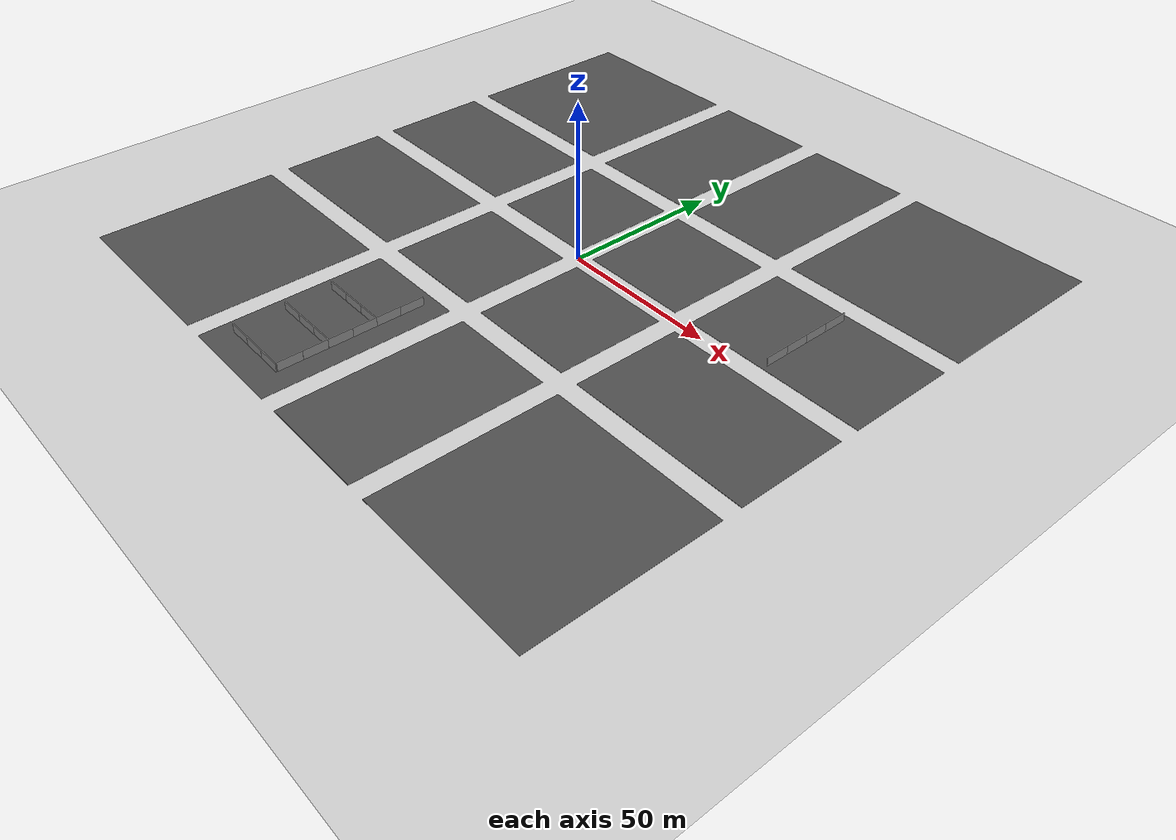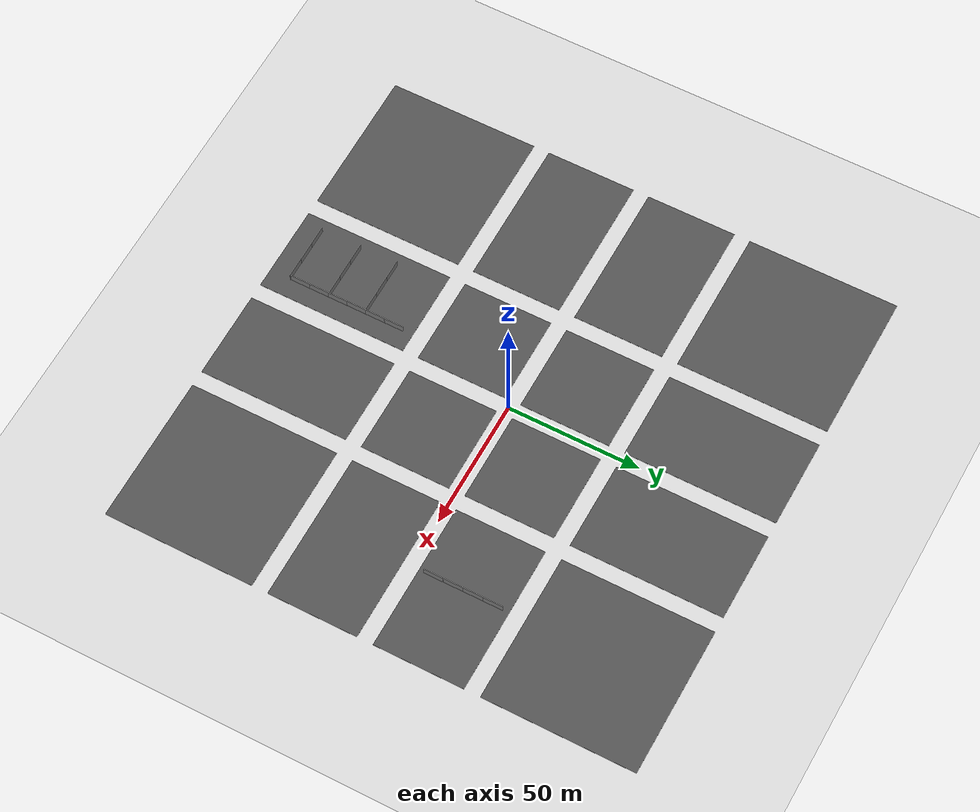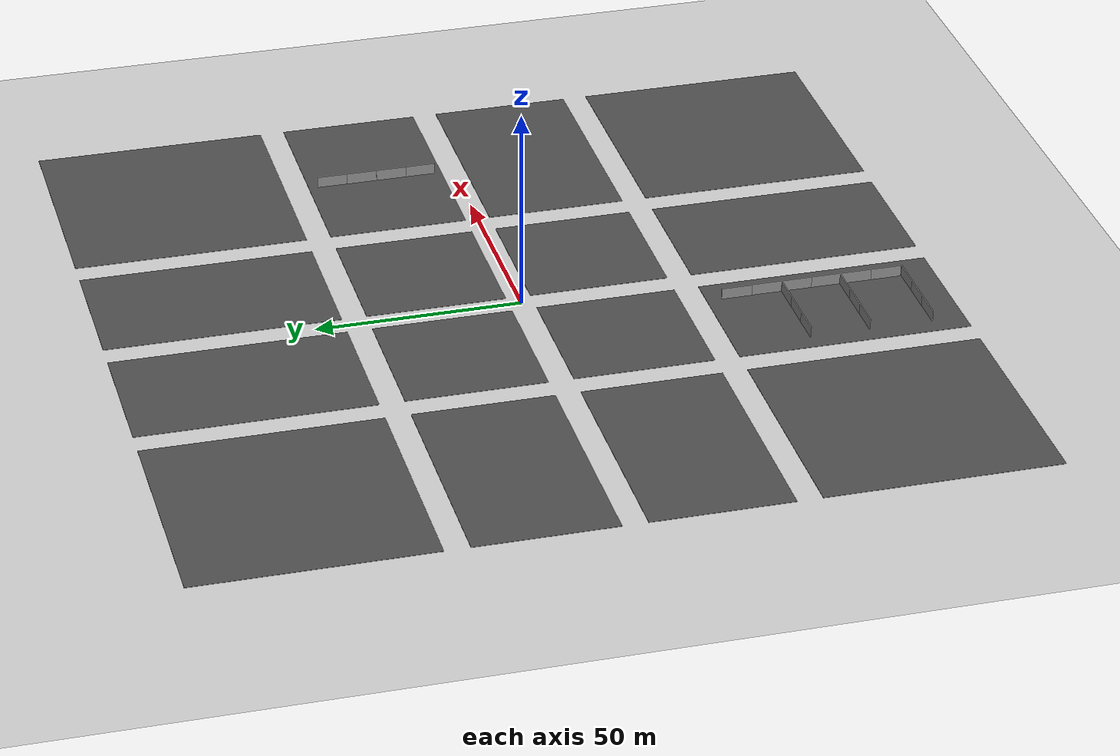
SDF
<sdf version="1.6">
 <world name="default">
  <light name="sun" type="directional">
   <pose>0 0 10 0 -0 0</pose>
   <diffuse>0.8 0.8 0.8 1</diffuse>
   <specular>0.2 0.2 0.2 1</specular>
   <attenuation>
    <range>1000</range>
    <constant>0.9</constant>
    <linear>0.01</linear>
    <quadratic>0.001</quadratic>
   </attenuation>
   <direction>-0.5 0.1 -0.9</direction>
  </light>
  <plugin name="ros_interface_plugin" filename="librotors_gazebo_ros_interface_plugin.so"/>
  <model name="ground_plane">
   <static>1</static>
   <link name="link">
    <collision name="collision">
     <geometry><plane><normal>0 0 1</normal><size>100 100</size></plane></geometry>
     <surface>
      <contact><collide_bitmask>65535</collide_bitmask></contact>
      <friction><ode><mu>100</mu><mu2>50</mu2></ode></friction>
     </surface>
    </collision>
    <visual name="visual">
     <cast_shadows>0</cast_shadows>
     <geometry><plane><normal>0 0 1</normal><size>100 100</size></plane></geometry>
     <material>
      <script><uri>file://media/materials/scripts/gazebo.material</uri><name>Gazebo/Grey</name></script>
     </material>
    </visual>
   </link>
  </model>
  <gravity>0 0 -9.8</gravity>
  <magnetic_field>6e-06 2.3e-05 -4.2e-05</magnetic_field>
  <atmosphere type="adiabatic"/>
  <physics name="default_physics" default="0" type="ode">
   <max_step_size>0.0125</max_step_size>
   <real_time_factor>1</real_time_factor>
   <real_time_update_rate>80</real_time_update_rate>
  </physics>
  <scene><ambient>0.4 0.4 0.4 1</ambient><background>0.7 0.7 0.7 1</background><shadows>1</shadows></scene>
  <audio><device>default</device></audio>
  <spherical_coordinates>
   <surface_model>EARTH_WGS84</surface_model>
   <latitude_deg>47.3667</latitude_deg>
   <longitude_deg>8.55</longitude_deg>
   <elevation>500</elevation>
   <heading_deg>0</heading_deg>
  </spherical_coordinates>
  <model name="grey_wall_0">
   <static>1</static>
   <link name="link">
    <pose>0 0 1.4 0 -0 0</pose>
    <collision name="collision"><geometry><box><size>7.5 0.2 2.8</size></box></geometry></collision>
    <visual name="visual">
     <cast_shadows>0</cast_shadows>
     <geometry><box><size>7.5 0.2 2.8</size></box></geometry>
     <material>
      <script>
       <uri>model://grey_wall/materials/scripts</uri>
       <uri>model://grey_wall/materials/textures</uri>
       <name>vrc/grey_wall</name>
      </script>
     </material>
    </visual>
   </link>
   <pose>-13.6485 -91.8724 0 0 -0 0</pose>
  </model>
  <model name="grey_wall_1">
   <static>1</static>
   <link name="link">
    <pose>0 0 1.4 0 -0 0</pose>
    <collision name="collision"><geometry><box><size>7.5 0.2 2.8</size></box></geometry></collision>
    <visual name="visual">
     <cast_shadows>0</cast_shadows>
     <geometry><box><size>7.5 0.2 2.8</size></box></geometry>
     <material>
      <script>
       <uri>model://grey_wall/materials/scripts</uri>
       <uri>model://grey_wall/materials/textures</uri>
       <name>vrc/grey_wall</name>
      </script>
     </material>
    </visual>
   </link>
   <pose>-21.1622 -91.8562 0 0 -0 0</pose>
  </model>
  <model name="grey_wall_2">
   <static>1</static>
   <link name="link">
    <pose>0 0 1.4 0 -0 0</pose>
    <collision name="collision"><geometry><box><size>7.5 0.2 2.8</size></box></geometry></collision>
    <visual name="visual">
     <cast_shadows>0</cast_shadows>
     <geometry><box><size>7.5 0.2 2.8</size></box></geometry>
     <material>
      <script>
       <uri>model://grey_wall/materials/scripts</uri>
       <uri>model://grey_wall/materials/textures</uri>
       <name>vrc/grey_wall</name>
      </script>
     </material>
    </visual>
   </link>
   <pose>-28.7002 -91.8648 0 0 -0 0</pose>
  </model>
  <model name="grey_wall_3">
   <static>1</static>
   <link name="link">
    <pose>0 0 1.4 0 -0 0</pose>
    <collision name="collision"><geometry><box><size>7.5 0.2 2.8</size></box></geometry></collision>
    <visual name="visual">
     <cast_shadows>0</cast_shadows>
     <geometry><box><size>7.5 0.2 2.8</size></box></geometry>
     <material>
      <script>
       <uri>model://grey_wall/materials/scripts</uri>
       <uri>model://grey_wall/materials/textures</uri>
       <name>vrc/grey_wall</name>
      </script>
     </material>
    </visual>
   </link>
   <pose>-13.8674 -61.7168 0 0 -0 0</pose>
  </model>
  <model name="grey_wall_4">
   <static>1</static>
   <link name="link">
    <pose>0 0 1.4 0 -0 0</pose>
    <collision name="collision"><geometry><box><size>7.5 0.2 2.8</size></box></geometry></collision>
    <visual name="visual">
     <cast_shadows>0</cast_shadows>
     <geometry><box><size>7.5 0.2 2.8</size></box></geometry>
     <material>
      <script>
       <uri>model://grey_wall/materials/scripts</uri>
       <uri>model://grey_wall/materials/textures</uri>
       <name>vrc/grey_wall</name>
      </script>
     </material>
    </visual>
   </link>
   <pose>-13.8061 -76.3282 0 0 -0 0</pose>
  </model>
  <model name="grey_wall_5">
   <static>1</static>
   <link name="link">
    <pose>0 0 1.4 0 -0 0</pose>
    <collision name="collision"><geometry><box><size>7.5 0.2 2.8</size></box></geometry></collision>
    <visual name="visual">
     <cast_shadows>0</cast_shadows>
     <geometry><box><size>7.5 0.2 2.8</size></box></geometry>
     <material>
      <script>
       <uri>model://grey_wall/materials/scripts</uri>
       <uri>model://grey_wall/materials/textures</uri>
       <name>vrc/grey_wall</name>
      </script>
     </material>
    </visual>
   </link>
   <pose>-21.2633 -76.3346 0 0 -0 0</pose>
  </model>
  <model name="grey_wall_6">
   <static>1</static>
   <link name="link">
    <pose>0 0 1.4 0 -0 0</pose>
    <collision name="collision"><geometry><box><size>7.5 0.2 2.8</size></box></geometry></collision>
    <visual name="visual">
     <cast_shadows>0</cast_shadows>
     <geometry><box><size>7.5 0.2 2.8</size></box></geometry>
     <material>
      <script>
       <uri>model://grey_wall/materials/scripts</uri>
       <uri>model://grey_wall/materials/textures</uri>
       <name>vrc/grey_wall</name>
      </script>
     </material>
    </visual>
   </link>
   <pose>-21.3782 -61.7197 0 0 -0 0</pose>
  </model>
  <model name="grey_wall_7">
   <static>1</static>
   <link name="link">
    <pose>0 0 1.4 0 -0 0</pose>
    <collision name="collision"><geometry><box><size>7.5 0.2 2.8</size></box></geometry></collision>
    <visual name="visual">
     <cast_shadows>0</cast_shadows>
     <geometry><box><size>7.5 0.2 2.8</size></box></geometry>
     <material>
      <script>
       <uri>model://grey_wall/materials/scripts</uri>
       <uri>model://grey_wall/materials/textures</uri>
       <name>vrc/grey_wall</name>
      </script>
     </material>
    </visual>
   </link>
   <pose>-28.766 -76.3295 0 0 -0 0</pose>
  </model>
  <model name="grey_wall_8">
   <static>1</static>
   <link name="link">
    <pose>0 0 1.4 0 -0 0</pose>
    <collision name="collision"><geometry><box><size>7.5 0.2 2.8</size></box></geometry></collision>
    <visual name="visual">
     <cast_shadows>0</cast_shadows>
     <geometry><box><size>7.5 0.2 2.8</size></box></geometry>
     <material>
      <script>
       <uri>model://grey_wall/materials/scripts</uri>
       <uri>model://grey_wall/materials/textures</uri>
       <name>vrc/grey_wall</name>
      </script>
     </material>
    </visual>
   </link>
   <pose>-28.8862 -61.7116 0 0 -0 0</pose>
  </model>
  <model name="asphalt_plane_34x57">
   <link name="link">
    <inertial>
     <mass>1</mass>
     <inertia><ixx>1</ixx><ixy>0</ixy><ixz>0</ixz><iyy>1</iyy><iyz>0</iyz><izz>1</izz></inertia>
    </inertial>
    <visual name="visual">
     <cast_shadows>0</cast_shadows>
     <geometry><box><size>34 57 0.1</size></box></geometry>
     <material>
      <script>
       <uri>model://asphalt_plane/materials/scripts</uri>
       <uri>model://asphalt_plane/materials/textures</uri>
       <name>vrc/asphalt</name>
      </script>
      <shader type="vertex"><normal_map>__default__</normal_map></shader>
      <ambient>0.5 0.5 0.5 1</ambient>
      <diffuse>0.5 0.5 0.5 1</diffuse>
      <specular>0.2 0.2 0.2 1</specular>
      <emissive>0 0 0 1</emissive>
     </material>
    </visual>
    <collision name="collision">
     <geometry><box><size>34 57 0.1</size></box></geometry>
     <surface>
      <friction>
       <ode><mu>1</mu><mu2>1</mu2><fdir1>0 0 0</fdir1><slip1>0</slip1><slip2>0</slip2></ode>
       <torsional>
        <coefficient>1</coefficient>
        <patch_radius>0</patch_radius>
        <surface_radius>0</surface_radius>
        <use_patch_radius>1</use_patch_radius>
        <ode><slip>0</slip></ode>
       </torsional>
      </friction>
      <bounce><restitution_coefficient>0</restitution_coefficient><threshold>1e+06</threshold></bounce>
      <contact>
       <collide_without_contact>0</collide_without_contact>
       <collide_without_contact_bitmask>1</collide_without_contact_bitmask>
       <collide_bitmask>1</collide_bitmask>
       <ode>
        <soft_cfm>0</soft_cfm>
        <soft_erp>0.2</soft_erp>
        <kp>1e+13</kp>
        <kd>1</kd>
        <max_vel>0.01</max_vel>
        <min_depth>0</min_depth>
       </ode>
       <bullet>
        <split_impulse>1</split_impulse>
        <split_impulse_penetration_threshold>-0.01</split_impulse_penetration_threshold>
        <soft_cfm>0</soft_cfm>
        <soft_erp>0.2</soft_erp>
        <kp>1e+13</kp>
        <kd>1</kd>
       </bullet>
      </contact>
     </surface>
    </collision>
   </link>
   <static>1</static>
   <pose>71.5 -20 0 0 0 -1.5708</pose>
  </model>
  <model name="asphalt_plane_34x57_0">
   <link name="link">
    <inertial>
     <mass>1</mass>
     <inertia><ixx>1</ixx><ixy>0</ixy><ixz>0</ixz><iyy>1</iyy><iyz>0</iyz><izz>1</izz></inertia>
    </inertial>
    <visual name="visual">
     <cast_shadows>0</cast_shadows>
     <geometry><box><size>34 57 0.1</size></box></geometry>
     <material>
      <script>
       <uri>model://asphalt_plane/materials/scripts</uri>
       <uri>model://asphalt_plane/materials/textures</uri>
       <name>vrc/asphalt</name>
      </script>
      <shader type="vertex"><normal_map>__default__</normal_map></shader>
      <ambient>0.5 0.5 0.5 1</ambient>
      <diffuse>0.5 0.5 0.5 1</diffuse>
      <specular>0.2 0.2 0.2 1</specular>
      <emissive>0 0 0 1</emissive>
     </material>
    </visual>
    <collision name="collision">
     <geometry><box><size>34 57 0.1</size></box></geometry>
     <surface>
      <friction>
       <ode><mu>1</mu><mu2>1</mu2><fdir1>0 0 0</fdir1><slip1>0</slip1><slip2>0</slip2></ode>
       <torsional>
        <coefficient>1</coefficient>
        <patch_radius>0</patch_radius>
        <surface_radius>0</surface_radius>
        <use_patch_radius>1</use_patch_radius>
        <ode><slip>0</slip></ode>
       </torsional>
      </friction>
      <bounce><restitution_coefficient>0</restitution_coefficient><threshold>1e+06</threshold></bounce>
      <contact>
       <collide_without_contact>0</collide_without_contact>
       <collide_without_contact_bitmask>1</collide_without_contact_bitmask>
       <collide_bitmask>1</collide_bitmask>
       <ode>
        <soft_cfm>0</soft_cfm>
        <soft_erp>0.2</soft_erp>
        <kp>1e+13</kp>
        <kd>1</kd>
        <max_vel>0.01</max_vel>
        <min_depth>0</min_depth>
       </ode>
       <bullet>
        <split_impulse>1</split_impulse>
        <split_impulse_penetration_threshold>-0.01</split_impulse_penetration_threshold>
        <soft_cfm>0</soft_cfm>
        <soft_erp>0.2</soft_erp>
        <kp>1e+13</kp>
        <kd>1</kd>
       </bullet>
      </contact>
     </surface>
    </collision>
   </link>
   <static>1</static>
   <pose>-20 -71.5 0 0 -0 0</pose>
  </model>
  <model name="asphalt_plane_34x57_1">
   <link name="link">
    <inertial>
     <mass>1</mass>
     <inertia><ixx>1</ixx><ixy>0</ixy><ixz>0</ixz><iyy>1</iyy><iyz>0</iyz><izz>1</izz></inertia>
    </inertial>
    <visual name="visual">
     <cast_shadows>0</cast_shadows>
     <geometry><box><size>34 57 0.1</size></box></geometry>
     <material>
      <script>
       <uri>model://asphalt_plane/materials/scripts</uri>
       <uri>model://asphalt_plane/materials/textures</uri>
       <name>vrc/asphalt</name>
      </script>
      <shader type="vertex"><normal_map>__default__</normal_map></shader>
      <ambient>0.5 0.5 0.5 1</ambient>
      <diffuse>0.5 0.5 0.5 1</diffuse>
      <specular>0.2 0.2 0.2 1</specular>
      <emissive>0 0 0 1</emissive>
     </material>
    </visual>
    <collision name="collision">
     <geometry><box><size>34 57 0.1</size></box></geometry>
     <surface>
      <friction>
       <ode><mu>1</mu><mu2>1</mu2><fdir1>0 0 0</fdir1><slip1>0</slip1><slip2>0</slip2></ode>
       <torsional>
        <coefficient>1</coefficient>
        <patch_radius>0</patch_radius>
        <surface_radius>0</surface_radius>
        <use_patch_radius>1</use_patch_radius>
        <ode><slip>0</slip></ode>
       </torsional>
      </friction>
      <bounce><restitution_coefficient>0</restitution_coefficient><threshold>1e+06</threshold></bounce>
      <contact>
       <collide_without_contact>0</collide_without_contact>
       <collide_without_contact_bitmask>1</collide_without_contact_bitmask>
       <collide_bitmask>1</collide_bitmask>
       <ode>
        <soft_cfm>0</soft_cfm>
        <soft_erp>0.2</soft_erp>
        <kp>1e+13</kp>
        <kd>1</kd>
        <max_vel>0.01</max_vel>
        <min_depth>0</min_depth>
       </ode>
       <bullet>
        <split_impulse>1</split_impulse>
        <split_impulse_penetration_threshold>-0.01</split_impulse_penetration_threshold>
        <soft_cfm>0</soft_cfm>
        <soft_erp>0.2</soft_erp>
        <kp>1e+13</kp>
        <kd>1</kd>
       </bullet>
      </contact>
     </surface>
    </collision>
   </link>
   <static>1</static>
   <pose>20 -71.5 0 0 -0 0</pose>
  </model>
  <model name="asphalt_plane_34x57_2">
   <link name="link">
    <inertial>
     <mass>1</mass>
     <inertia><ixx>1</ixx><ixy>0</ixy><ixz>0</ixz><iyy>1</iyy><iyz>0</iyz><izz>1</izz></inertia>
    </inertial>
    <visual name="visual">
     <cast_shadows>0</cast_shadows>
     <geometry><box><size>34 57 0.1</size></box></geometry>
     <material>
      <script>
       <uri>model://asphalt_plane/materials/scripts</uri>
       <uri>model://asphalt_plane/materials/textures</uri>
       <name>vrc/asphalt</name>
      </script>
      <shader type="vertex"><normal_map>__default__</normal_map></shader>
      <ambient>0.5 0.5 0.5 1</ambient>
      <diffuse>0.5 0.5 0.5 1</diffuse>
      <specular>0.2 0.2 0.2 1</specular>
      <emissive>0 0 0 1</emissive>
     </material>
    </visual>
    <collision name="collision">
     <geometry><box><size>34 57 0.1</size></box></geometry>
     <surface>
      <friction>
       <ode><mu>1</mu><mu2>1</mu2><fdir1>0 0 0</fdir1><slip1>0</slip1><slip2>0</slip2></ode>
       <torsional>
        <coefficient>1</coefficient>
        <patch_radius>0</patch_radius>
        <surface_radius>0</surface_radius>
        <use_patch_radius>1</use_patch_radius>
        <ode><slip>0</slip></ode>
       </torsional>
      </friction>
      <bounce><restitution_coefficient>0</restitution_coefficient><threshold>1e+06</threshold></bounce>
      <contact>
       <collide_without_contact>0</collide_without_contact>
       <collide_without_contact_bitmask>1</collide_without_contact_bitmask>
       <collide_bitmask>1</collide_bitmask>
       <ode>
        <soft_cfm>0</soft_cfm>
        <soft_erp>0.2</soft_erp>
        <kp>1e+13</kp>
        <kd>1</kd>
        <max_vel>0.01</max_vel>
        <min_depth>0</min_depth>
       </ode>
       <bullet>
        <split_impulse>1</split_impulse>
        <split_impulse_penetration_threshold>-0.01</split_impulse_penetration_threshold>
        <soft_cfm>0</soft_cfm>
        <soft_erp>0.2</soft_erp>
        <kp>1e+13</kp>
        <kd>1</kd>
       </bullet>
      </contact>
     </surface>
    </collision>
   </link>
   <static>1</static>
   <pose>20 71.5 0 0 -0 0</pose>
  </model>
  <model name="asphalt_plane_34x57_3">
   <link name="link">
    <inertial>
     <mass>1</mass>
     <inertia><ixx>1</ixx><ixy>0</ixy><ixz>0</ixz><iyy>1</iyy><iyz>0</iyz><izz>1</izz></inertia>
    </inertial>
    <visual name="visual">
     <cast_shadows>0</cast_shadows>
     <geometry><box><size>34 57 0.1</size></box></geometry>
     <material>
      <script>
       <uri>model://asphalt_plane/materials/scripts</uri>
       <uri>model://asphalt_plane/materials/textures</uri>
       <name>vrc/asphalt</name>
      </script>
      <shader type="vertex"><normal_map>__default__</normal_map></shader>
      <ambient>0.5 0.5 0.5 1</ambient>
      <diffuse>0.5 0.5 0.5 1</diffuse>
      <specular>0.2 0.2 0.2 1</specular>
      <emissive>0 0 0 1</emissive>
     </material>
    </visual>
    <collision name="collision">
     <geometry><box><size>34 57 0.1</size></box></geometry>
     <surface>
      <friction>
       <ode><mu>1</mu><mu2>1</mu2><fdir1>0 0 0</fdir1><slip1>0</slip1><slip2>0</slip2></ode>
       <torsional>
        <coefficient>1</coefficient>
        <patch_radius>0</patch_radius>
        <surface_radius>0</surface_radius>
        <use_patch_radius>1</use_patch_radius>
        <ode><slip>0</slip></ode>
       </torsional>
      </friction>
      <bounce><restitution_coefficient>0</restitution_coefficient><threshold>1e+06</threshold></bounce>
      <contact>
       <collide_without_contact>0</collide_without_contact>
       <collide_without_contact_bitmask>1</collide_without_contact_bitmask>
       <collide_bitmask>1</collide_bitmask>
       <ode>
        <soft_cfm>0</soft_cfm>
        <soft_erp>0.2</soft_erp>
        <kp>1e+13</kp>
        <kd>1</kd>
        <max_vel>0.01</max_vel>
        <min_depth>0</min_depth>
       </ode>
       <bullet>
        <split_impulse>1</split_impulse>
        <split_impulse_penetration_threshold>-0.01</split_impulse_penetration_threshold>
        <soft_cfm>0</soft_cfm>
        <soft_erp>0.2</soft_erp>
        <kp>1e+13</kp>
        <kd>1</kd>
       </bullet>
      </contact>
     </surface>
    </collision>
   </link>
   <static>1</static>
   <pose>-20 71.5 0 0 -0 0</pose>
  </model>
  <model name="asphalt_plane_34x57_4">
   <link name="link">
    <inertial>
     <mass>1</mass>
     <inertia><ixx>1</ixx><ixy>0</ixy><ixz>0</ixz><iyy>1</iyy><iyz>0</iyz><izz>1</izz></inertia>
    </inertial>
    <visual name="visual">
     <cast_shadows>0</cast_shadows>
     <geometry><box><size>34 57 0.1</size></box></geometry>
     <material>
      <script>
       <uri>model://asphalt_plane/materials/scripts</uri>
       <uri>model://asphalt_plane/materials/textures</uri>
       <name>vrc/asphalt</name>
      </script>
      <shader type="vertex"><normal_map>__default__</normal_map></shader>
      <ambient>0.5 0.5 0.5 1</ambient>
      <diffuse>0.5 0.5 0.5 1</diffuse>
      <specular>0.2 0.2 0.2 1</specular>
      <emissive>0 0 0 1</emissive>
     </material>
    </visual>
    <collision name="collision">
     <geometry><box><size>34 57 0.1</size></box></geometry>
     <surface>
      <friction>
       <ode><mu>1</mu><mu2>1</mu2><fdir1>0 0 0</fdir1><slip1>0</slip1><slip2>0</slip2></ode>
       <torsional>
        <coefficient>1</coefficient>
        <patch_radius>0</patch_radius>
        <surface_radius>0</surface_radius>
        <use_patch_radius>1</use_patch_radius>
        <ode><slip>0</slip></ode>
       </torsional>
      </friction>
      <bounce><restitution_coefficient>0</restitution_coefficient><threshold>1e+06</threshold></bounce>
      <contact>
       <collide_without_contact>0</collide_without_contact>
       <collide_without_contact_bitmask>1</collide_without_contact_bitmask>
       <collide_bitmask>1</collide_bitmask>
       <ode>
        <soft_cfm>0</soft_cfm>
        <soft_erp>0.2</soft_erp>
        <kp>1e+13</kp>
        <kd>1</kd>
        <max_vel>0.01</max_vel>
        <min_depth>0</min_depth>
       </ode>
       <bullet>
        <split_impulse>1</split_impulse>
        <split_impulse_penetration_threshold>-0.01</split_impulse_penetration_threshold>
        <soft_cfm>0</soft_cfm>
        <soft_erp>0.2</soft_erp>
        <kp>1e+13</kp>
        <kd>1</kd>
       </bullet>
      </contact>
     </surface>
    </collision>
   </link>
   <static>1</static>
   <pose>71.5 20 0 0 0 -1.5708</pose>
  </model>
  <model name="asphalt_plane_34x57_5">
   <link name="link">
    <inertial>
     <mass>1</mass>
     <inertia><ixx>1</ixx><ixy>0</ixy><ixz>0</ixz><iyy>1</iyy><iyz>0</iyz><izz>1</izz></inertia>
    </inertial>
    <visual name="visual">
     <cast_shadows>0</cast_shadows>
     <geometry><box><size>34 57 0.1</size></box></geometry>
     <material>
      <script>
       <uri>model://asphalt_plane/materials/scripts</uri>
       <uri>model://asphalt_plane/materials/textures</uri>
       <name>vrc/asphalt</name>
      </script>
      <shader type="vertex"><normal_map>__default__</normal_map></shader>
      <ambient>0.5 0.5 0.5 1</ambient>
      <diffuse>0.5 0.5 0.5 1</diffuse>
      <specular>0.2 0.2 0.2 1</specular>
      <emissive>0 0 0 1</emissive>
     </material>
    </visual>
    <collision name="collision">
     <geometry><box><size>34 57 0.1</size></box></geometry>
     <surface>
      <friction>
       <ode><mu>1</mu><mu2>1</mu2><fdir1>0 0 0</fdir1><slip1>0</slip1><slip2>0</slip2></ode>
       <torsional>
        <coefficient>1</coefficient>
        <patch_radius>0</patch_radius>
        <surface_radius>0</surface_radius>
        <use_patch_radius>1</use_patch_radius>
        <ode><slip>0</slip></ode>
       </torsional>
      </friction>
      <bounce><restitution_coefficient>0</restitution_coefficient><threshold>1e+06</threshold></bounce>
      <contact>
       <collide_without_contact>0</collide_without_contact>
       <collide_without_contact_bitmask>1</collide_without_contact_bitmask>
       <collide_bitmask>1</collide_bitmask>
       <ode>
        <soft_cfm>0</soft_cfm>
        <soft_erp>0.2</soft_erp>
        <kp>1e+13</kp>
        <kd>1</kd>
        <max_vel>0.01</max_vel>
        <min_depth>0</min_depth>
       </ode>
       <bullet>
        <split_impulse>1</split_impulse>
        <split_impulse_penetration_threshold>-0.01</split_impulse_penetration_threshold>
        <soft_cfm>0</soft_cfm>
        <soft_erp>0.2</soft_erp>
        <kp>1e+13</kp>
        <kd>1</kd>
       </bullet>
      </contact>
     </surface>
    </collision>
   </link>
   <static>1</static>
   <pose>-71.5 20 0 0 0 -1.5708</pose>
  </model>
  <model name="asphalt_plane_34x57_6">
   <link name="link">
    <inertial>
     <mass>1</mass>
     <inertia><ixx>1</ixx><ixy>0</ixy><ixz>0</ixz><iyy>1</iyy><iyz>0</iyz><izz>1</izz></inertia>
    </inertial>
    <visual name="visual">
     <cast_shadows>0</cast_shadows>
     <geometry><box><size>34 57 0.1</size></box></geometry>
     <material>
      <script>
       <uri>model://asphalt_plane/materials/scripts</uri>
       <uri>model://asphalt_plane/materials/textures</uri>
       <name>vrc/asphalt</name>
      </script>
      <shader type="vertex"><normal_map>__default__</normal_map></shader>
      <ambient>0.5 0.5 0.5 1</ambient>
      <diffuse>0.5 0.5 0.5 1</diffuse>
      <specular>0.2 0.2 0.2 1</specular>
      <emissive>0 0 0 1</emissive>
     </material>
    </visual>
    <collision name="collision">
     <geometry><box><size>34 57 0.1</size></box></geometry>
     <surface>
      <friction>
       <ode><mu>1</mu><mu2>1</mu2><fdir1>0 0 0</fdir1><slip1>0</slip1><slip2>0</slip2></ode>
       <torsional>
        <coefficient>1</coefficient>
        <patch_radius>0</patch_radius>
        <surface_radius>0</surface_radius>
        <use_patch_radius>1</use_patch_radius>
        <ode><slip>0</slip></ode>
       </torsional>
      </friction>
      <bounce><restitution_coefficient>0</restitution_coefficient><threshold>1e+06</threshold></bounce>
      <contact>
       <collide_without_contact>0</collide_without_contact>
       <collide_without_contact_bitmask>1</collide_without_contact_bitmask>
       <collide_bitmask>1</collide_bitmask>
       <ode>
        <soft_cfm>0</soft_cfm>
        <soft_erp>0.2</soft_erp>
        <kp>1e+13</kp>
        <kd>1</kd>
        <max_vel>0.01</max_vel>
        <min_depth>0</min_depth>
       </ode>
       <bullet>
        <split_impulse>1</split_impulse>
        <split_impulse_penetration_threshold>-0.01</split_impulse_penetration_threshold>
        <soft_cfm>0</soft_cfm>
        <soft_erp>0.2</soft_erp>
        <kp>1e+13</kp>
        <kd>1</kd>
       </bullet>
      </contact>
     </surface>
    </collision>
   </link>
   <static>1</static>
   <pose>-71.5 -20 0 0 0 -1.5708</pose>
  </model>
  <model name="asphalt_plane_57x57">
   <link name="link">
    <inertial>
     <mass>1</mass>
     <inertia><ixx>1</ixx><ixy>0</ixy><ixz>0</ixz><iyy>1</iyy><iyz>0</iyz><izz>1</izz></inertia>
    </inertial>
    <visual name="visual">
     <cast_shadows>0</cast_shadows>
     <geometry><box><size>57 57 0.1</size></box></geometry>
     <material>
      <script>
       <uri>model://asphalt_plane/materials/scripts</uri>
       <uri>model://asphalt_plane/materials/textures</uri>
       <name>vrc/asphalt</name>
      </script>
      <shader type="vertex"><normal_map>__default__</normal_map></shader>
      <ambient>0.5 0.5 0.5 1</ambient>
      <diffuse>0.5 0.5 0.5 1</diffuse>
      <specular>0.2 0.2 0.2 1</specular>
      <emissive>0 0 0 1</emissive>
     </material>
    </visual>
    <collision name="collision">
     <geometry><box><size>57 57 0.1</size></box></geometry>
     <surface>
      <friction>
       <ode><mu>1</mu><mu2>1</mu2><fdir1>0 0 0</fdir1><slip1>0</slip1><slip2>0</slip2></ode>
       <torsional>
        <coefficient>1</coefficient>
        <patch_radius>0</patch_radius>
        <surface_radius>0</surface_radius>
        <use_patch_radius>1</use_patch_radius>
        <ode><slip>0</slip></ode>
       </torsional>
      </friction>
      <bounce><restitution_coefficient>0</restitution_coefficient><threshold>1e+06</threshold></bounce>
      <contact>
       <collide_without_contact>0</collide_without_contact>
       <collide_without_contact_bitmask>1</collide_without_contact_bitmask>
       <collide_bitmask>1</collide_bitmask>
       <ode>
        <soft_cfm>0</soft_cfm>
        <soft_erp>0.2</soft_erp>
        <kp>1e+13</kp>
        <kd>1</kd>
        <max_vel>0.01</max_vel>
        <min_depth>0</min_depth>
       </ode>
       <bullet>
        <split_impulse>1</split_impulse>
        <split_impulse_penetration_threshold>-0.01</split_impulse_penetration_threshold>
        <soft_cfm>0</soft_cfm>
        <soft_erp>0.2</soft_erp>
        <kp>1e+13</kp>
        <kd>1</kd>
       </bullet>
      </contact>
     </surface>
    </collision>
   </link>
   <static>1</static>
   <pose>-71.5 -71.5 0 0 -0 0</pose>
  </model>
  <model name="asphalt_plane_57x57_0">
   <link name="link">
    <inertial>
     <mass>1</mass>
     <inertia><ixx>1</ixx><ixy>0</ixy><ixz>0</ixz><iyy>1</iyy><iyz>0</iyz><izz>1</izz></inertia>
    </inertial>
    <visual name="visual">
     <cast_shadows>0</cast_shadows>
     <geometry><box><size>57 57 0.1</size></box></geometry>
     <material>
      <script>
       <uri>model://asphalt_plane/materials/scripts</uri>
       <uri>model://asphalt_plane/materials/textures</uri>
       <name>vrc/asphalt</name>
      </script>
      <shader type="vertex"><normal_map>__default__</normal_map></shader>
      <ambient>0.5 0.5 0.5 1</ambient>
      <diffuse>0.5 0.5 0.5 1</diffuse>
      <specular>0.2 0.2 0.2 1</specular>
      <emissive>0 0 0 1</emissive>
     </material>
    </visual>
    <collision name="collision">
     <geometry><box><size>57 57 0.1</size></box></geometry>
     <surface>
      <friction>
       <ode><mu>1</mu><mu2>1</mu2><fdir1>0 0 0</fdir1><slip1>0</slip1><slip2>0</slip2></ode>
       <torsional>
        <coefficient>1</coefficient>
        <patch_radius>0</patch_radius>
        <surface_radius>0</surface_radius>
        <use_patch_radius>1</use_patch_radius>
        <ode><slip>0</slip></ode>
       </torsional>
      </friction>
      <bounce><restitution_coefficient>0</restitution_coefficient><threshold>1e+06</threshold></bounce>
      <contact>
       <collide_without_contact>0</collide_without_contact>
       <collide_without_contact_bitmask>1</collide_without_contact_bitmask>
       <collide_bitmask>1</collide_bitmask>
       <ode>
        <soft_cfm>0</soft_cfm>
        <soft_erp>0.2</soft_erp>
        <kp>1e+13</kp>
        <kd>1</kd>
        <max_vel>0.01</max_vel>
        <min_depth>0</min_depth>
       </ode>
       <bullet>
        <split_impulse>1</split_impulse>
        <split_impulse_penetration_threshold>-0.01</split_impulse_penetration_threshold>
        <soft_cfm>0</soft_cfm>
        <soft_erp>0.2</soft_erp>
        <kp>1e+13</kp>
        <kd>1</kd>
       </bullet>
      </contact>
     </surface>
    </collision>
   </link>
   <static>1</static>
   <pose>71.5 -71.5 0 0 -0 0</pose>
  </model>
  <model name="asphalt_plane_57x57_1">
   <link name="link">
    <inertial>
     <mass>1</mass>
     <inertia><ixx>1</ixx><ixy>0</ixy><ixz>0</ixz><iyy>1</iyy><iyz>0</iyz><izz>1</izz></inertia>
    </inertial>
    <visual name="visual">
     <cast_shadows>0</cast_shadows>
     <geometry><box><size>57 57 0.1</size></box></geometry>
     <material>
      <script>
       <uri>model://asphalt_plane/materials/scripts</uri>
       <uri>model://asphalt_plane/materials/textures</uri>
       <name>vrc/asphalt</name>
      </script>
      <shader type="vertex"><normal_map>__default__</normal_map></shader>
      <ambient>0.5 0.5 0.5 1</ambient>
      <diffuse>0.5 0.5 0.5 1</diffuse>
      <specular>0.2 0.2 0.2 1</specular>
      <emissive>0 0 0 1</emissive>
     </material>
    </visual>
    <collision name="collision">
     <geometry><box><size>57 57 0.1</size></box></geometry>
     <surface>
      <friction>
       <ode><mu>1</mu><mu2>1</mu2><fdir1>0 0 0</fdir1><slip1>0</slip1><slip2>0</slip2></ode>
       <torsional>
        <coefficient>1</coefficient>
        <patch_radius>0</patch_radius>
        <surface_radius>0</surface_radius>
        <use_patch_radius>1</use_patch_radius>
        <ode><slip>0</slip></ode>
       </torsional>
      </friction>
      <bounce><restitution_coefficient>0</restitution_coefficient><threshold>1e+06</threshold></bounce>
      <contact>
       <collide_without_contact>0</collide_without_contact>
       <collide_without_contact_bitmask>1</collide_without_contact_bitmask>
       <collide_bitmask>1</collide_bitmask>
       <ode>
        <soft_cfm>0</soft_cfm>
        <soft_erp>0.2</soft_erp>
        <kp>1e+13</kp>
        <kd>1</kd>
        <max_vel>0.01</max_vel>
        <min_depth>0</min_depth>
       </ode>
       <bullet>
        <split_impulse>1</split_impulse>
        <split_impulse_penetration_threshold>-0.01</split_impulse_penetration_threshold>
        <soft_cfm>0</soft_cfm>
        <soft_erp>0.2</soft_erp>
        <kp>1e+13</kp>
        <kd>1</kd>
       </bullet>
      </contact>
     </surface>
    </collision>
   </link>
   <static>1</static>
   <pose>71.5 71.5 0 0 -0 0</pose>
  </model>
  <model name="asphalt_plane_57x57_2">
   <link name="link">
    <inertial>
     <mass>1</mass>
     <inertia><ixx>1</ixx><ixy>0</ixy><ixz>0</ixz><iyy>1</iyy><iyz>0</iyz><izz>1</izz></inertia>
    </inertial>
    <visual name="visual">
     <cast_shadows>0</cast_shadows>
     <geometry><box><size>57 57 0.1</size></box></geometry>
     <material>
      <script>
       <uri>model://asphalt_plane/materials/scripts</uri>
       <uri>model://asphalt_plane/materials/textures</uri>
       <name>vrc/asphalt</name>
      </script>
      <shader type="vertex"><normal_map>__default__</normal_map></shader>
      <ambient>0.5 0.5 0.5 1</ambient>
      <diffuse>0.5 0.5 0.5 1</diffuse>
      <specular>0.2 0.2 0.2 1</specular>
      <emissive>0 0 0 1</emissive>
     </material>
    </visual>
    <collision name="collision">
     <geometry><box><size>57 57 0.1</size></box></geometry>
     <surface>
      <friction>
       <ode><mu>1</mu><mu2>1</mu2><fdir1>0 0 0</fdir1><slip1>0</slip1><slip2>0</slip2></ode>
       <torsional>
        <coefficient>1</coefficient>
        <patch_radius>0</patch_radius>
        <surface_radius>0</surface_radius>
        <use_patch_radius>1</use_patch_radius>
        <ode><slip>0</slip></ode>
       </torsional>
      </friction>
      <bounce><restitution_coefficient>0</restitution_coefficient><threshold>1e+06</threshold></bounce>
      <contact>
       <collide_without_contact>0</collide_without_contact>
       <collide_without_contact_bitmask>1</collide_without_contact_bitmask>
       <collide_bitmask>1</collide_bitmask>
       <ode>
        <soft_cfm>0</soft_cfm>
        <soft_erp>0.2</soft_erp>
        <kp>1e+13</kp>
        <kd>1</kd>
        <max_vel>0.01</max_vel>
        <min_depth>0</min_depth>
       </ode>
       <bullet>
        <split_impulse>1</split_impulse>
        <split_impulse_penetration_threshold>-0.01</split_impulse_penetration_threshold>
        <soft_cfm>0</soft_cfm>
        <soft_erp>0.2</soft_erp>
        <kp>1e+13</kp>
        <kd>1</kd>
       </bullet>
      </contact>
     </surface>
    </collision>
   </link>
   <static>1</static>
   <pose>-71.5 71.5 0 0 -0 0</pose>
  </model>
  <model name="asphalt_plane_34x34">
   <link name="link">
    <inertial>
     <mass>1</mass>
     <inertia><ixx>1</ixx><ixy>0</ixy><ixz>0</ixz><iyy>1</iyy><iyz>0</iyz><izz>1</izz></inertia>
    </inertial>
    <visual name="visual">
     <cast_shadows>0</cast_shadows>
     <geometry><box><size>34 34 0.1</size></box></geometry>
     <material>
      <script>
       <uri>model://asphalt_plane/materials/scripts</uri>
       <uri>model://asphalt_plane/materials/textures</uri>
       <name>vrc/asphalt</name>
      </script>
      <shader type="vertex"><normal_map>__default__</normal_map></shader>
      <ambient>0.5 0.5 0.5 1</ambient>
      <diffuse>0.5 0.5 0.5 1</diffuse>
      <specular>0.2 0.2 0.2 1</specular>
      <emissive>0 0 0 1</emissive>
     </material>
    </visual>
    <collision name="collision">
     <geometry><box><size>34 34 0.1</size></box></geometry>
     <surface>
      <friction>
       <ode><mu>1</mu><mu2>1</mu2><fdir1>0 0 0</fdir1><slip1>0</slip1><slip2>0</slip2></ode>
       <torsional>
        <coefficient>1</coefficient>
        <patch_radius>0</patch_radius>
        <surface_radius>0</surface_radius>
        <use_patch_radius>1</use_patch_radius>
        <ode><slip>0</slip></ode>
       </torsional>
      </friction>
      <bounce><restitution_coefficient>0</restitution_coefficient><threshold>1e+06</threshold></bounce>
      <contact>
       <collide_without_contact>0</collide_without_contact>
       <collide_without_contact_bitmask>1</collide_without_contact_bitmask>
       <collide_bitmask>1</collide_bitmask>
       <ode>
        <soft_cfm>0</soft_cfm>
        <soft_erp>0.2</soft_erp>
        <kp>1e+13</kp>
        <kd>1</kd>
        <max_vel>0.01</max_vel>
        <min_depth>0</min_depth>
       </ode>
       <bullet>
        <split_impulse>1</split_impulse>
        <split_impulse_penetration_threshold>-0.01</split_impulse_penetration_threshold>
        <soft_cfm>0</soft_cfm>
        <soft_erp>0.2</soft_erp>
        <kp>1e+13</kp>
        <kd>1</kd>
       </bullet>
      </contact>
     </surface>
    </collision>
   </link>
   <static>1</static>
   <pose>20 20 0 0 -0 0</pose>
  </model>
  <model name="asphalt_plane_34x34_0">
   <link name="link">
    <inertial>
     <mass>1</mass>
     <inertia><ixx>1</ixx><ixy>0</ixy><ixz>0</ixz><iyy>1</iyy><iyz>0</iyz><izz>1</izz></inertia>
    </inertial>
    <visual name="visual">
     <cast_shadows>0</cast_shadows>
     <geometry><box><size>34 34 0.1</size></box></geometry>
     <material>
      <script>
       <uri>model://asphalt_plane/materials/scripts</uri>
       <uri>model://asphalt_plane/materials/textures</uri>
       <name>vrc/asphalt</name>
      </script>
      <shader type="vertex"><normal_map>__default__</normal_map></shader>
      <ambient>0.5 0.5 0.5 1</ambient>
      <diffuse>0.5 0.5 0.5 1</diffuse>
      <specular>0.2 0.2 0.2 1</specular>
      <emissive>0 0 0 1</emissive>
     </material>
    </visual>
    <collision name="collision">
     <geometry><box><size>34 34 0.1</size></box></geometry>
     <surface>
      <friction>
       <ode><mu>1</mu><mu2>1</mu2><fdir1>0 0 0</fdir1><slip1>0</slip1><slip2>0</slip2></ode>
       <torsional>
        <coefficient>1</coefficient>
        <patch_radius>0</patch_radius>
        <surface_radius>0</surface_radius>
        <use_patch_radius>1</use_patch_radius>
        <ode><slip>0</slip></ode>
       </torsional>
      </friction>
      <bounce><restitution_coefficient>0</restitution_coefficient><threshold>1e+06</threshold></bounce>
      <contact>
       <collide_without_contact>0</collide_without_contact>
       <collide_without_contact_bitmask>1</collide_without_contact_bitmask>
       <collide_bitmask>1</collide_bitmask>
       <ode>
        <soft_cfm>0</soft_cfm>
        <soft_erp>0.2</soft_erp>
        <kp>1e+13</kp>
        <kd>1</kd>
        <max_vel>0.01</max_vel>
        <min_depth>0</min_depth>
       </ode>
       <bullet>
        <split_impulse>1</split_impulse>
        <split_impulse_penetration_threshold>-0.01</split_impulse_penetration_threshold>
        <soft_cfm>0</soft_cfm>
        <soft_erp>0.2</soft_erp>
        <kp>1e+13</kp>
        <kd>1</kd>
       </bullet>
      </contact>
     </surface>
    </collision>
   </link>
   <static>1</static>
   <pose>-20 20 0 0 -0 0</pose>
  </model>
  <model name="asphalt_plane_34x34_1">
   <link name="link">
    <inertial>
     <mass>1</mass>
     <inertia><ixx>1</ixx><ixy>0</ixy><ixz>0</ixz><iyy>1</iyy><iyz>0</iyz><izz>1</izz></inertia>
    </inertial>
    <visual name="visual">
     <cast_shadows>0</cast_shadows>
     <geometry><box><size>34 34 0.1</size></box></geometry>
     <material>
      <script>
       <uri>model://asphalt_plane/materials/scripts</uri>
       <uri>model://asphalt_plane/materials/textures</uri>
       <name>vrc/asphalt</name>
      </script>
      <shader type="vertex"><normal_map>__default__</normal_map></shader>
      <ambient>0.5 0.5 0.5 1</ambient>
      <diffuse>0.5 0.5 0.5 1</diffuse>
      <specular>0.2 0.2 0.2 1</specular>
      <emissive>0 0 0 1</emissive>
     </material>
    </visual>
    <collision name="collision">
     <geometry><box><size>34 34 0.1</size></box></geometry>
     <surface>
      <friction>
       <ode><mu>1</mu><mu2>1</mu2><fdir1>0 0 0</fdir1><slip1>0</slip1><slip2>0</slip2></ode>
       <torsional>
        <coefficient>1</coefficient>
        <patch_radius>0</patch_radius>
        <surface_radius>0</surface_radius>
        <use_patch_radius>1</use_patch_radius>
        <ode><slip>0</slip></ode>
       </torsional>
      </friction>
      <bounce><restitution_coefficient>0</restitution_coefficient><threshold>1e+06</threshold></bounce>
      <contact>
       <collide_without_contact>0</collide_without_contact>
       <collide_without_contact_bitmask>1</collide_without_contact_bitmask>
       <collide_bitmask>1</collide_bitmask>
       <ode>
        <soft_cfm>0</soft_cfm>
        <soft_erp>0.2</soft_erp>
        <kp>1e+13</kp>
        <kd>1</kd>
        <max_vel>0.01</max_vel>
        <min_depth>0</min_depth>
       </ode>
       <bullet>
        <split_impulse>1</split_impulse>
        <split_impulse_penetration_threshold>-0.01</split_impulse_penetration_threshold>
        <soft_cfm>0</soft_cfm>
        <soft_erp>0.2</soft_erp>
        <kp>1e+13</kp>
        <kd>1</kd>
       </bullet>
      </contact>
     </surface>
    </collision>
   </link>
   <static>1</static>
   <pose>20 -20 0 0 -0 0</pose>
  </model>
  <model name="asphalt_plane_34x34_2">
   <link name="link">
    <inertial>
     <mass>1</mass>
     <inertia><ixx>1</ixx><ixy>0</ixy><ixz>0</ixz><iyy>1</iyy><iyz>0</iyz><izz>1</izz></inertia>
    </inertial>
    <visual name="visual">
     <cast_shadows>0</cast_shadows>
     <geometry><box><size>34 34 0.1</size></box></geometry>
     <material>
      <script>
       <uri>model://asphalt_plane/materials/scripts</uri>
       <uri>model://asphalt_plane/materials/textures</uri>
       <name>vrc/asphalt</name>
      </script>
      <shader type="vertex"><normal_map>__default__</normal_map></shader>
      <ambient>0.5 0.5 0.5 1</ambient>
      <diffuse>0.5 0.5 0.5 1</diffuse>
      <specular>0.2 0.2 0.2 1</specular>
      <emissive>0 0 0 1</emissive>
     </material>
    </visual>
    <collision name="collision">
     <geometry><box><size>34 34 0.1</size></box></geometry>
     <surface>
      <friction>
       <ode><mu>1</mu><mu2>1</mu2><fdir1>0 0 0</fdir1><slip1>0</slip1><slip2>0</slip2></ode>
       <torsional>
        <coefficient>1</coefficient>
        <patch_radius>0</patch_radius>
        <surface_radius>0</surface_radius>
        <use_patch_radius>1</use_patch_radius>
        <ode><slip>0</slip></ode>
       </torsional>
      </friction>
      <bounce><restitution_coefficient>0</restitution_coefficient><threshold>1e+06</threshold></bounce>
      <contact>
       <collide_without_contact>0</collide_without_contact>
       <collide_without_contact_bitmask>1</collide_without_contact_bitmask>
       <collide_bitmask>1</collide_bitmask>
       <ode>
        <soft_cfm>0</soft_cfm>
        <soft_erp>0.2</soft_erp>
        <kp>1e+13</kp>
        <kd>1</kd>
        <max_vel>0.01</max_vel>
        <min_depth>0</min_depth>
       </ode>
       <bullet>
        <split_impulse>1</split_impulse>
        <split_impulse_penetration_threshold>-0.01</split_impulse_penetration_threshold>
        <soft_cfm>0</soft_cfm>
        <soft_erp>0.2</soft_erp>
        <kp>1e+13</kp>
        <kd>1</kd>
       </bullet>
      </contact>
     </surface>
    </collision>
   </link>
   <static>1</static>
   <pose>-20 -20 0 0 -0 0</pose>
  </model>
  <model name="grey_wall">
   <static>1</static>
   <link name="link">
    <pose>0 0 1.4 0 -0 0</pose>
    <collision name="collision"><geometry><box><size>7.5 0.2 2.8</size></box></geometry></collision>
    <visual name="visual">
     <cast_shadows>0</cast_shadows>
     <geometry><box><size>7.5 0.2 2.8</size></box></geometry>
     <material>
      <script>
       <uri>model://grey_wall/materials/scripts</uri>
       <uri>model://grey_wall/materials/textures</uri>
       <name>vrc/grey_wall</name>
      </script>
     </material>
    </visual>
   </link>
   <pose>-10 -80.2819 0.1 0 -0 1.5708</pose>
  </model>
  <model name="grey_wall_9">
   <static>1</static>
   <link name="link">
    <pose>0 0 1.4 0 -0 0</pose>
    <collision name="collision"><geometry><box><size>7.5 0.2 2.8</size></box></geometry></collision>
    <visual name="visual">
     <cast_shadows>0</cast_shadows>
     <geometry><box><size>7.5 0.2 2.8</size></box></geometry>
     <material>
      <script>
       <uri>model://grey_wall/materials/scripts</uri>
       <uri>model://grey_wall/materials/textures</uri>
       <name>vrc/grey_wall</name>
      </script>
     </material>
    </visual>
   </link>
   <pose>-10 -65.3478 0.1 0 0 -1.5708</pose>
  </model>
  <model name="grey_wall_10">
   <static>1</static>
   <link name="link">
    <pose>0 0 1.4 0 -0 0</pose>
    <collision name="collision"><geometry><box><size>7.5 0.2 2.8</size></box></geometry></collision>
    <visual name="visual">
     <cast_shadows>0</cast_shadows>
     <geometry><box><size>7.5 0.2 2.8</size></box></geometry>
     <material>
      <script>
       <uri>model://grey_wall/materials/scripts</uri>
       <uri>model://grey_wall/materials/textures</uri>
       <name>vrc/grey_wall</name>
      </script>
     </material>
    </visual>
   </link>
   <pose>-10 -50.4615 0 0 -0 1.5708</pose>
  </model>
  <model name="grey_wall_11">
   <static>1</static>
   <link name="link">
    <pose>0 0 1.4 0 -0 0</pose>
    <collision name="collision"><geometry><box><size>7.5 0.2 2.8</size></box></geometry></collision>
    <visual name="visual">
     <cast_shadows>0</cast_shadows>
     <geometry><box><size>7.5 0.2 2.8</size></box></geometry>
     <material>
      <script>
       <uri>model://grey_wall/materials/scripts</uri>
       <uri>model://grey_wall/materials/textures</uri>
       <name>vrc/grey_wall</name>
      </script>
     </material>
    </visual>
   </link>
   <pose>68.8195 30.9426 0 0 -0 1.5708</pose>
  </model>
  <model name="grey_wall_12">
   <static>1</static>
   <link name="link">
    <pose>0 0 1.4 0 -0 0</pose>
    <collision name="collision"><geometry><box><size>7.5 0.2 2.8</size></box></geometry></collision>
    <visual name="visual">
     <cast_shadows>0</cast_shadows>
     <geometry><box><size>7.5 0.2 2.8</size></box></geometry>
     <material>
      <script>
       <uri>model://grey_wall/materials/scripts</uri>
       <uri>model://grey_wall/materials/textures</uri>
       <name>vrc/grey_wall</name>
      </script>
     </material>
    </visual>
   </link>
   <pose>68.8094 23.4356 0 0 -0 1.5708</pose>
  </model>
  <model name="grey_wall_13">
   <static>1</static>
   <link name="link">
    <pose>0 0 1.4 0 -0 0</pose>
    <collision name="collision"><geometry><box><size>7.5 0.2 2.8</size></box></geometry></collision>
    <visual name="visual">
     <cast_shadows>0</cast_shadows>
     <geometry><box><size>7.5 0.2 2.8</size></box></geometry>
     <material>
      <script>
       <uri>model://grey_wall/materials/scripts</uri>
       <uri>model://grey_wall/materials/textures</uri>
       <name>vrc/grey_wall</name>
      </script>
     </material>
    </visual>
   </link>
   <pose>68.8305 15.9236 0 0 -0 1.5708</pose>
  </model>
  <model name="grey_wall_14">
   <static>1</static>
   <link name="link">
    <pose>0 0 1.4 0 -0 0</pose>
    <collision name="collision"><geometry><box><size>7.5 0.2 2.8</size></box></geometry></collision>
    <visual name="visual">
     <cast_shadows>0</cast_shadows>
     <geometry><box><size>7.5 0.2 2.8</size></box></geometry>
     <material>
      <script>
       <uri>model://grey_wall/materials/scripts</uri>
       <uri>model://grey_wall/materials/textures</uri>
       <name>vrc/grey_wall</name>
      </script>
     </material>
    </visual>
   </link>
   <pose>68.8639 8.47072 0 0 -0 1.5708</pose>
  </model>
  <model name="grey_wall_15">
   <static>1</static>
   <link name="link">
    <pose>0 0 1.4 0 -0 0</pose>
    <collision name="collision"><geometry><box><size>7.5 0.2 2.8</size></box></geometry></collision>
    <visual name="visual">
     <cast_shadows>0</cast_shadows>
     <geometry><box><size>7.5 0.2 2.8</size></box></geometry>
     <material>
      <script>
       <uri>model://grey_wall/materials/scripts</uri>
       <uri>model://grey_wall/materials/textures</uri>
       <name>vrc/grey_wall</name>
      </script>
     </material>
    </visual>
   </link>
   <pose>-9.99991 -87.8171 0.1 0 -0 1.5708</pose>
  </model>
  <model name="grey_wall_16">
   <static>1</static>
   <link name="link">
    <pose>0 0 1.4 0 -0 0</pose>
    <collision name="collision"><geometry><box><size>7.5 0.2 2.8</size></box></geometry></collision>
    <visual name="visual">
     <cast_shadows>0</cast_shadows>
     <geometry><box><size>7.5 0.2 2.8</size></box></geometry>
     <material>
      <script>
       <uri>model://grey_wall/materials/scripts</uri>
       <uri>model://grey_wall/materials/textures</uri>
       <name>vrc/grey_wall</name>
      </script>
     </material>
    </visual>
   </link>
   <pose>-9.98106 -72.8027 0.1 0 -0 1.5708</pose>
  </model>
  <model name="grey_wall_17">
   <static>1</static>
   <link name="link">
    <pose>0 0 1.4 0 -0 0</pose>
    <collision name="collision"><geometry><box><size>7.5 0.2 2.8</size></box></geometry></collision>
    <visual name="visual">
     <cast_shadows>0</cast_shadows>
     <geometry><box><size>7.5 0.2 2.8</size></box></geometry>
     <material>
      <script>
       <uri>model://grey_wall/materials/scripts</uri>
       <uri>model://grey_wall/materials/textures</uri>
       <name>vrc/grey_wall</name>
      </script>
     </material>
    </visual>
   </link>
   <pose>-9.99605 -57.9191 0.1 0 -0 1.5708</pose>
  </model>
 </world>
</sdf>
